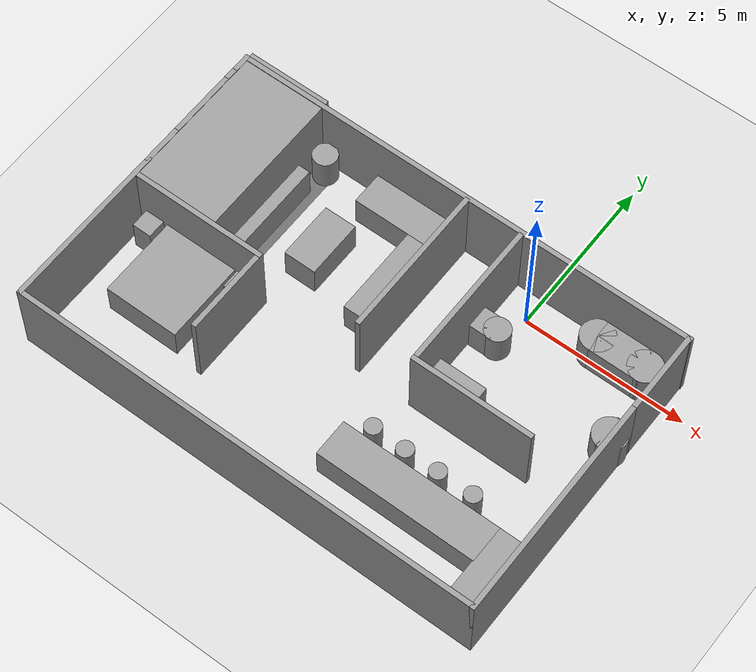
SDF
<sdf version="1.7">
 <world name="default">
  <scene><ambient>0.4 0.4 0.4 1</ambient><background>0.7 0.7 0.7 1</background><shadows>1</shadows></scene>
  <light name="sun" type="directional">
   <pose>0 0 10 0 -0 0</pose>
   <diffuse>0.8 0.8 0.8 1</diffuse>
   <specular>0.2 0.2 0.2 1</specular>
   <attenuation>
    <range>1000</range>
    <constant>0.9</constant>
    <linear>0.01</linear>
    <quadratic>0.001</quadratic>
   </attenuation>
   <direction>-0.5 0.1 -0.9</direction>
   <spot><inner_angle>0</inner_angle><outer_angle>0</outer_angle><falloff>0</falloff></spot>
  </light>
  <model name="ground_plane">
   <static>1</static>
   <link name="link">
    <collision name="collision">
     <geometry><plane><normal>0 0 1</normal><size>100 100</size></plane></geometry>
     <surface><friction><ode><mu>100</mu><mu2>50</mu2></ode></friction></surface>
    </collision>
    <visual name="visual">
     <cast_shadows>0</cast_shadows>
     <geometry><plane><normal>0 0 1</normal><size>100 100</size></plane></geometry>
     <material>
      <script><uri>file://media/materials/scripts/gazebo.material</uri><name>Gazebo/Grey</name></script>
     </material>
    </visual>
   </link>
  </model>
  <physics type="ode">
   <real_time_update_rate>0</real_time_update_rate>
   <max_step_size>0.001</max_step_size>
   <real_time_factor>1</real_time_factor>
   <ode>
    <solver>
     <type>quick</type>
     <iters>150</iters>
     <precon_iters>0</precon_iters>
     <sor>1.4</sor>
     <use_dynamic_moi_rescaling>1</use_dynamic_moi_rescaling>
    </solver>
    <constraints>
     <cfm>1e-05</cfm>
     <erp>0.2</erp>
     <contact_max_correcting_vel>2000</contact_max_correcting_vel>
     <contact_surface_layer>0.01</contact_surface_layer>
    </constraints>
   </ode>
  </physics>
  <gravity>0 0 -9.8</gravity>
  <magnetic_field>6e-06 2.3e-05 -4.2e-05</magnetic_field>
  <atmosphere type="adiabatic"/>
  <spherical_coordinates>
   <surface_model>EARTH_WGS84</surface_model>
   <latitude_deg>0</latitude_deg>
   <longitude_deg>0</longitude_deg>
   <elevation>0</elevation>
   <heading_deg>0</heading_deg>
  </spherical_coordinates>
  <model name="half_square">
   <pose>-2.87363 -3.76482 0 0 -0 0</pose>
   <link name="Wall_0">
    <collision name="Wall_0_Collision">
     <geometry><box><size>14.5 0.15 2.5</size></box></geometry>
     <pose>0 0 1.25 0 -0 0</pose>
    </collision>
    <visual name="Wall_0_Visual">
     <pose>0 0 1.25 0 -0 0</pose>
     <geometry><box><size>14.5 0.15 2.5</size></box></geometry>
     <material>
      <script><uri>file://media/materials/scripts/gazebo.material</uri><name>Gazebo/Grey</name></script>
      <ambient>1 1 1 1</ambient>
     </material>
     <meta><layer>0</layer></meta>
    </visual>
    <pose>-0.010056 -4.61503 0 0 -0 0</pose>
   </link>
   <link name="Wall_11">
    <collision name="Wall_11_Collision">
     <geometry><box><size>2.5 0.15 2.5</size></box></geometry>
     <pose>0 0 1.25 0 -0 0</pose>
    </collision>
    <visual name="Wall_11_Visual">
     <pose>0 0 1.25 0 -0 0</pose>
     <geometry><box><size>2.5 0.15 2.5</size></box></geometry>
     <material>
      <script><uri>file://media/materials/scripts/gazebo.material</uri><name>Gazebo/Grey</name></script>
      <ambient>1 1 1 1</ambient>
     </material>
     <meta><layer>0</layer></meta>
    </visual>
    <pose>7.16494 3.40997 0 0 -0 1.5708</pose>
   </link>
   <link name="Wall_13">
    <collision name="Wall_13_Collision">
     <geometry><box><size>0.730235 0.15 2.5</size></box></geometry>
     <pose>0 0 1.25 0 -0 0</pose>
    </collision>
    <visual name="Wall_13_Visual">
     <pose>0 0 1.25 0 -0 0</pose>
     <geometry><box><size>0.730235 0.15 2.5</size></box></geometry>
     <material>
      <script><uri>file://media/materials/scripts/gazebo.material</uri><name>Gazebo/Grey</name></script>
      <ambient>1 1 1 1</ambient>
     </material>
     <meta><layer>0</layer></meta>
    </visual>
    <pose>-7.18506 4.32491 0 0 -0 1.5708</pose>
   </link>
   <link name="Wall_14">
    <collision name="Wall_14_Collision">
     <geometry><box><size>14.5 0.15 2.5</size></box></geometry>
     <pose>0 0 1.25 0 -0 0</pose>
    </collision>
    <visual name="Wall_14_Visual">
     <pose>0 0 1.25 0 -0 0</pose>
     <geometry><box><size>14.5 0.15 2.5</size></box></geometry>
     <material>
      <script><uri>file://media/materials/scripts/gazebo.material</uri><name>Gazebo/Grey</name></script>
      <ambient>1 1 1 1</ambient>
     </material>
     <meta><layer>0</layer></meta>
    </visual>
    <pose>0.010057 4.61486 0 0 -0 0</pose>
   </link>
   <link name="Wall_2">
    <collision name="Wall_2_Collision">
     <geometry><box><size>5.25 0.15 2.5</size></box></geometry>
     <pose>0 0 1.25 0 -0 0</pose>
    </collision>
    <visual name="Wall_2_Visual">
     <pose>0 0 1.25 0 -0 0</pose>
     <geometry><box><size>5.25 0.15 2.5</size></box></geometry>
     <material>
      <script><uri>file://media/materials/scripts/gazebo.material</uri><name>Gazebo/Grey</name></script>
      <ambient>1 1 1 1</ambient>
     </material>
     <meta><layer>0</layer></meta>
    </visual>
    <pose>-7.18506 -2.06503 0 0 -0 1.5708</pose>
   </link>
   <link name="Wall_4">
    <collision name="Wall_4_Collision">
     <geometry><box><size>7 0.15 2.5</size></box></geometry>
     <pose>0 0 1.25 0 -0 0</pose>
    </collision>
    <visual name="Wall_4_Visual">
     <pose>0 0 1.25 0 -0 0</pose>
     <geometry><box><size>7 0.15 2.5</size></box></geometry>
     <material>
      <script><uri>file://media/materials/scripts/gazebo.material</uri><name>Gazebo/Grey</name></script>
      <ambient>1 1 1 1</ambient>
     </material>
     <meta><layer>0</layer></meta>
    </visual>
    <pose>7.16494 -1.19003 0 0 -0 1.5708</pose>
   </link>
   <link name="Wall_6">
    <collision name="Wall_6_Collision">
     <geometry><box><size>1.25 0.15 2.5</size></box></geometry>
     <pose>0 0 1.25 0 -0 0</pose>
    </collision>
    <visual name="Wall_6_Visual">
     <pose>0 0 1.25 0 -0 0</pose>
     <geometry><box><size>1.25 0.15 2.5</size></box></geometry>
     <material>
      <script><uri>file://media/materials/scripts/gazebo.material</uri><name>Gazebo/Grey</name></script>
      <ambient>1 1 1 1</ambient>
     </material>
     <meta><layer>0</layer></meta>
    </visual>
    <pose>-7.18506 1.03497 0 0 -0 1.5708</pose>
   </link>
   <link name="Wall_8">
    <collision name="Wall_8_Collision">
     <geometry><box><size>2.25 0.15 2.5</size></box></geometry>
     <pose>0 0 1.25 0 -0 0</pose>
    </collision>
    <visual name="Wall_8_Visual">
     <pose>0 0 1.25 0 -0 0</pose>
     <geometry><box><size>2.25 0.15 2.5</size></box></geometry>
     <material>
      <script><uri>file://media/materials/scripts/gazebo.material</uri><name>Gazebo/Grey</name></script>
      <ambient>1 1 1 1</ambient>
     </material>
     <meta><layer>0</layer></meta>
    </visual>
    <pose>-7.18506 2.63497 0 0 -0 1.5708</pose>
   </link>
   <link name="Wall_9">
    <collision name="Wall_9_Collision">
     <geometry><box><size>0.5 0.15 2.5</size></box></geometry>
     <pose>0 0 1.25 0 -0 0</pose>
    </collision>
    <visual name="Wall_9_Visual">
     <pose>0 0 1.25 0 -0 0</pose>
     <geometry><box><size>0.5 0.15 2.5</size></box></geometry>
     <material>
      <script><uri>file://media/materials/scripts/gazebo.material</uri><name>Gazebo/Grey</name></script>
      <ambient>1 1 1 1</ambient>
     </material>
     <meta><layer>0</layer></meta>
    </visual>
    <pose>-7.18506 3.85997 0 0 -0 1.5708</pose>
   </link>
   <static>1</static>
  </model>
  <plugin name="gazebo_occupancy_map" filename="libgazebo_2Dmap_plugin.so">
   <map_resolution>0.02</map_resolution>
   <map_height>0.7</map_height>
   <map_size_x>20</map_size_x>
   <map_size_y>20</map_size_y>
   <init_robot_x>0</init_robot_x>
   <init_robot_y>0</init_robot_y>
  </plugin>
  <model name="open_walls">
   <pose>-3.64652 -2.81912 0 0 -0 0</pose>
   <link name="Wall_41">
    <collision name="Wall_41_Collision">
     <geometry><box><size>4.75 0.15 2.5</size></box></geometry>
     <pose>0 0 1.25 0 -0 0</pose>
    </collision>
    <visual name="Wall_41_Visual">
     <pose>0 0 1.25 0 -0 0</pose>
     <geometry><box><size>4.75 0.15 2.5</size></box></geometry>
     <material>
      <script><uri>file://media/materials/scripts/gazebo.material</uri><name>Gazebo/Grey</name></script>
      <ambient>1 1 1 1</ambient>
     </material>
     <meta><layer>0</layer></meta>
    </visual>
    <pose>2.75376 1.29573 0 0 -0 1.5708</pose>
   </link>
   <link name="Wall_44">
    <collision name="Wall_44_Collision">
     <geometry><box><size>4.25 0.15 2.5</size></box></geometry>
     <pose>0 0 1.25 0 -0 0</pose>
    </collision>
    <visual name="Wall_44_Visual">
     <pose>0 0 1.25 0 -0 0</pose>
     <geometry><box><size>4.25 0.15 2.5</size></box></geometry>
     <material>
      <script><uri>file://media/materials/scripts/gazebo.material</uri><name>Gazebo/Grey</name></script>
      <ambient>1 1 1 1</ambient>
     </material>
     <meta><layer>0</layer></meta>
    </visual>
    <pose>-4.30376 -0.99573 0 0 -0 0</pose>
   </link>
   <link name="Wall_45">
    <collision name="Wall_45_Collision">
     <geometry><box><size>2.75 0.15 2.5</size></box></geometry>
     <pose>0 0 1.25 0 -0 0</pose>
    </collision>
    <visual name="Wall_45_Visual">
     <pose>0 0 1.25 0 -0 0</pose>
     <geometry><box><size>2.75 0.15 2.5</size></box></geometry>
     <material>
      <script><uri>file://media/materials/scripts/gazebo.material</uri><name>Gazebo/Grey</name></script>
      <ambient>1 1 1 1</ambient>
     </material>
     <meta><layer>0</layer></meta>
    </visual>
    <pose>-2.25376 -2.29573 0 0 -0 -1.5708</pose>
   </link>
   <link name="Wall_49">
    <collision name="Wall_49_Collision">
     <geometry><box><size>3.75 0.15 2.5</size></box></geometry>
     <pose>0 0 1.25 0 -0 0</pose>
    </collision>
    <visual name="Wall_49_Visual">
     <pose>0 0 1.25 0 -0 0</pose>
     <geometry><box><size>3.75 0.15 2.5</size></box></geometry>
     <material>
      <script><uri>file://media/materials/scripts/gazebo.material</uri><name>Gazebo/Grey</name></script>
      <ambient>1 1 1 1</ambient>
     </material>
     <meta><layer>0</layer></meta>
    </visual>
    <pose>4.55376 -1.00427 0 0 -0 0</pose>
   </link>
   <link name="Wall_51">
    <collision name="Wall_51_Collision">
     <geometry><box><size>4.75 0.15 2.5</size></box></geometry>
     <pose>0 0 1.25 0 -0 0</pose>
    </collision>
    <visual name="Wall_51_Visual">
     <pose>0 0 1.25 0 -0 0</pose>
     <geometry><box><size>4.75 0.15 2.5</size></box></geometry>
     <material>
      <script><uri>file://media/materials/scripts/gazebo.material</uri><name>Gazebo/Grey</name></script>
      <ambient>1 1 1 1</ambient>
     </material>
     <meta><layer>0</layer></meta>
    </visual>
    <pose>1.00265 1.2928 0 0 -0 -1.5708</pose>
   </link>
   <static>1</static>
  </model>
  <model name="interior_apartment">
   <link name="link_25">
    <inertial>
     <mass>5.75274</mass>
     <inertia><ixx>3.45106</ixx><ixy>0</ixy><ixz>0</ixz><iyy>3.03882</iyy><iyz>0</iyz><izz>5.53109</izz></inertia>
    </inertial>
    <pose>-6.24947 -2.42416 0 0 -0 0</pose>
    <visual name="visual">
     <geometry><box><size>2.3106 2.48973 1</size></box></geometry>
     <material>
      <lighting>1</lighting>
      <script><uri>file://media/materials/scripts/gazebo.material</uri><name>Gazebo/Grey</name></script>
      <shader type="pixel"/>
     </material>
    </visual>
    <collision name="collision">
     <geometry><box><size>2.3106 2.48973 1</size></box></geometry>
     <surface>
      <friction>
       <ode><mu>1</mu><mu2>1</mu2><fdir1>0 0 0</fdir1><slip1>0</slip1><slip2>0</slip2></ode>
       <torsional>
        <coefficient>1</coefficient>
        <patch_radius>0</patch_radius>
        <surface_radius>0</surface_radius>
        <use_patch_radius>1</use_patch_radius>
        <ode><slip>0</slip></ode>
       </torsional>
      </friction>
      <bounce><restitution_coefficient>0</restitution_coefficient><threshold>1e+06</threshold></bounce>
      <contact>
       <collide_without_contact>0</collide_without_contact>
       <collide_without_contact_bitmask>1</collide_without_contact_bitmask>
       <collide_bitmask>1</collide_bitmask>
       <ode>
        <soft_cfm>0</soft_cfm>
        <soft_erp>0.2</soft_erp>
        <kp>1e+13</kp>
        <kd>1</kd>
        <max_vel>0.01</max_vel>
        <min_depth>0</min_depth>
       </ode>
       <bullet>
        <split_impulse>1</split_impulse>
        <split_impulse_penetration_threshold>-0.01</split_impulse_penetration_threshold>
        <soft_cfm>0</soft_cfm>
        <soft_erp>0.2</soft_erp>
        <kp>1e+13</kp>
        <kd>1</kd>
       </bullet>
      </contact>
     </surface>
    </collision>
   </link>
   <link name="link_26">
    <inertial>
     <mass>0.338625</mass>
     <inertia>
      <ixx>0.0374622</ixx>
      <ixy>0</ixy>
      <ixz>0</ixz>
      <iyy>0.0380965</iyy>
      <iyz>0</iyz>
      <izz>0.0191213</izz>
     </inertia>
    </inertial>
    <pose>-7.84142 -1.45673 0 0 -0 0</pose>
    <visual name="visual">
     <geometry><box><size>0.591644 0.572334 1</size></box></geometry>
     <material>
      <lighting>1</lighting>
      <script><uri>file://media/materials/scripts/gazebo.material</uri><name>Gazebo/Grey</name></script>
      <shader type="pixel"/>
     </material>
    </visual>
    <collision name="collision">
     <geometry><box><size>0.591644 0.572334 1</size></box></geometry>
     <surface>
      <friction>
       <ode><mu>1</mu><mu2>1</mu2><fdir1>0 0 0</fdir1><slip1>0</slip1><slip2>0</slip2></ode>
       <torsional>
        <coefficient>1</coefficient>
        <patch_radius>0</patch_radius>
        <surface_radius>0</surface_radius>
        <use_patch_radius>1</use_patch_radius>
        <ode><slip>0</slip></ode>
       </torsional>
      </friction>
      <bounce><restitution_coefficient>0</restitution_coefficient><threshold>1e+06</threshold></bounce>
      <contact>
       <collide_without_contact>0</collide_without_contact>
       <collide_without_contact_bitmask>1</collide_without_contact_bitmask>
       <collide_bitmask>1</collide_bitmask>
       <ode>
        <soft_cfm>0</soft_cfm>
        <soft_erp>0.2</soft_erp>
        <kp>1e+13</kp>
        <kd>1</kd>
        <max_vel>0.01</max_vel>
        <min_depth>0</min_depth>
       </ode>
       <bullet>
        <split_impulse>1</split_impulse>
        <split_impulse_penetration_threshold>-0.01</split_impulse_penetration_threshold>
        <soft_cfm>0</soft_cfm>
        <soft_erp>0.2</soft_erp>
        <kp>1e+13</kp>
        <kd>1</kd>
       </bullet>
      </contact>
     </surface>
    </collision>
   </link>
   <link name="link_26_clone">
    <inertial>
     <mass>0.338625</mass>
     <inertia>
      <ixx>0.0374622</ixx>
      <ixy>0</ixy>
      <ixz>0</ixz>
      <iyy>0.0380965</iyy>
      <iyz>0</iyz>
      <izz>0.0191213</izz>
     </inertia>
    </inertial>
    <pose>-4.73124 -1.45506 0 0 -0 0</pose>
    <visual name="visual">
     <geometry><box><size>0.591644 0.572334 1</size></box></geometry>
     <material>
      <lighting>1</lighting>
      <script><uri>file://media/materials/scripts/gazebo.material</uri><name>Gazebo/Grey</name></script>
      <shader type="pixel"/>
     </material>
    </visual>
    <collision name="collision">
     <geometry><box><size>0.591644 0.572334 1</size></box></geometry>
     <surface>
      <friction>
       <ode><mu>1</mu><mu2>1</mu2><fdir1>0 0 0</fdir1><slip1>0</slip1><slip2>0</slip2></ode>
       <torsional>
        <coefficient>1</coefficient>
        <patch_radius>0</patch_radius>
        <surface_radius>0</surface_radius>
        <use_patch_radius>1</use_patch_radius>
        <ode><slip>0</slip></ode>
       </torsional>
      </friction>
      <bounce><restitution_coefficient>0</restitution_coefficient><threshold>1e+06</threshold></bounce>
      <contact>
       <collide_without_contact>0</collide_without_contact>
       <collide_without_contact_bitmask>1</collide_without_contact_bitmask>
       <collide_bitmask>1</collide_bitmask>
       <ode>
        <soft_cfm>0</soft_cfm>
        <soft_erp>0.2</soft_erp>
        <kp>1e+13</kp>
        <kd>1</kd>
        <max_vel>0.01</max_vel>
        <min_depth>0</min_depth>
       </ode>
       <bullet>
        <split_impulse>1</split_impulse>
        <split_impulse_penetration_threshold>-0.01</split_impulse_penetration_threshold>
        <soft_cfm>0</soft_cfm>
        <soft_erp>0.2</soft_erp>
        <kp>1e+13</kp>
        <kd>1</kd>
       </bullet>
      </contact>
     </surface>
    </collision>
   </link>
   <link name="link_27">
    <inertial>
     <mass>5.5966</mass>
     <inertia><ixx>1.06756</ixx><ixy>0</ixy><ixz>0</ixz><iyy>11.7992</iyy><iyz>0</iyz><izz>11.934</izz></inertia>
    </inertial>
    <pose>2.40008 -3.56867 0 0 -0 0</pose>
    <visual name="visual">
     <geometry><box><size>4.92943 1.13535 1</size></box></geometry>
     <material>
      <lighting>1</lighting>
      <script><uri>file://media/materials/scripts/gazebo.material</uri><name>Gazebo/Grey</name></script>
      <shader type="pixel"/>
     </material>
    </visual>
    <collision name="collision">
     <geometry><box><size>4.92943 1.13535 1</size></box></geometry>
     <surface>
      <friction>
       <ode><mu>1</mu><mu2>1</mu2><fdir1>0 0 0</fdir1><slip1>0</slip1><slip2>0</slip2></ode>
       <torsional>
        <coefficient>1</coefficient>
        <patch_radius>0</patch_radius>
        <surface_radius>0</surface_radius>
        <use_patch_radius>1</use_patch_radius>
        <ode><slip>0</slip></ode>
       </torsional>
      </friction>
      <bounce><restitution_coefficient>0</restitution_coefficient><threshold>1e+06</threshold></bounce>
      <contact>
       <collide_without_contact>0</collide_without_contact>
       <collide_without_contact_bitmask>1</collide_without_contact_bitmask>
       <collide_bitmask>1</collide_bitmask>
       <ode>
        <soft_cfm>0</soft_cfm>
        <soft_erp>0.2</soft_erp>
        <kp>1e+13</kp>
        <kd>1</kd>
        <max_vel>0.01</max_vel>
        <min_depth>0</min_depth>
       </ode>
       <bullet>
        <split_impulse>1</split_impulse>
        <split_impulse_penetration_threshold>-0.01</split_impulse_penetration_threshold>
        <soft_cfm>0</soft_cfm>
        <soft_erp>0.2</soft_erp>
        <kp>1e+13</kp>
        <kd>1</kd>
       </bullet>
      </contact>
     </surface>
    </collision>
   </link>
   <link name="link_28">
    <inertial>
     <mass>2.59133</mass>
     <inertia><ixx>1.66599</ixx><ixy>0</ixy><ixz>0</ixz><iyy>0.431888</iyy><iyz>0</iyz><izz>1.66599</izz></inertia>
    </inertial>
    <pose>5.33667 -4.29655 0 0 -0 0</pose>
    <visual name="visual">
     <geometry><box><size>1 2.59131 1</size></box></geometry>
     <material>
      <lighting>1</lighting>
      <script><uri>file://media/materials/scripts/gazebo.material</uri><name>Gazebo/Grey</name></script>
      <shader type="pixel"/>
     </material>
    </visual>
    <collision name="collision">
     <geometry><box><size>1 2.59131 1</size></box></geometry>
     <surface>
      <friction>
       <ode><mu>1</mu><mu2>1</mu2><fdir1>0 0 0</fdir1><slip1>0</slip1><slip2>0</slip2></ode>
       <torsional>
        <coefficient>1</coefficient>
        <patch_radius>0</patch_radius>
        <surface_radius>0</surface_radius>
        <use_patch_radius>1</use_patch_radius>
        <ode><slip>0</slip></ode>
       </torsional>
      </friction>
      <bounce><restitution_coefficient>0</restitution_coefficient><threshold>1e+06</threshold></bounce>
      <contact>
       <collide_without_contact>0</collide_without_contact>
       <collide_without_contact_bitmask>1</collide_without_contact_bitmask>
       <collide_bitmask>1</collide_bitmask>
       <ode>
        <soft_cfm>0</soft_cfm>
        <soft_erp>0.2</soft_erp>
        <kp>1e+13</kp>
        <kd>1</kd>
        <max_vel>0.01</max_vel>
        <min_depth>0</min_depth>
       </ode>
       <bullet>
        <split_impulse>1</split_impulse>
        <split_impulse_penetration_threshold>-0.01</split_impulse_penetration_threshold>
        <soft_cfm>0</soft_cfm>
        <soft_erp>0.2</soft_erp>
        <kp>1e+13</kp>
        <kd>1</kd>
       </bullet>
      </contact>
     </surface>
    </collision>
   </link>
   <link name="link_29">
    <inertial>
     <mass>0.253753</mass>
     <inertia>
      <ixx>0.0251705</ixx>
      <ixy>0</ixy>
      <ixz>0</ixz>
      <iyy>0.0251705</iyy>
      <iyz>0</iyz>
      <izz>0.00804876</izz>
     </inertia>
    </inertial>
    <pose>0.614105 -2.65673 0 0 -0 0</pose>
    <visual name="visual">
     <geometry><cylinder><radius>0.251868</radius><length>1</length></cylinder></geometry>
     <material>
      <lighting>1</lighting>
      <script><uri>file://media/materials/scripts/gazebo.material</uri><name>Gazebo/Grey</name></script>
      <shader type="pixel"/>
     </material>
    </visual>
    <collision name="collision">
     <geometry><cylinder><radius>0.251868</radius><length>1</length></cylinder></geometry>
     <surface>
      <friction>
       <ode><mu>1</mu><mu2>1</mu2><fdir1>0 0 0</fdir1><slip1>0</slip1><slip2>0</slip2></ode>
       <torsional>
        <coefficient>1</coefficient>
        <patch_radius>0</patch_radius>
        <surface_radius>0</surface_radius>
        <use_patch_radius>1</use_patch_radius>
        <ode><slip>0</slip></ode>
       </torsional>
      </friction>
      <bounce><restitution_coefficient>0</restitution_coefficient><threshold>1e+06</threshold></bounce>
      <contact>
       <collide_without_contact>0</collide_without_contact>
       <collide_without_contact_bitmask>1</collide_without_contact_bitmask>
       <collide_bitmask>1</collide_bitmask>
       <ode>
        <soft_cfm>0</soft_cfm>
        <soft_erp>0.2</soft_erp>
        <kp>1e+13</kp>
        <kd>1</kd>
        <max_vel>0.01</max_vel>
        <min_depth>0</min_depth>
       </ode>
       <bullet>
        <split_impulse>1</split_impulse>
        <split_impulse_penetration_threshold>-0.01</split_impulse_penetration_threshold>
        <soft_cfm>0</soft_cfm>
        <soft_erp>0.2</soft_erp>
        <kp>1e+13</kp>
        <kd>1</kd>
       </bullet>
      </contact>
     </surface>
    </collision>
   </link>
   <link name="link_29_clone">
    <inertial>
     <mass>0.253753</mass>
     <inertia>
      <ixx>0.0251705</ixx>
      <ixy>0</ixy>
      <ixz>0</ixz>
      <iyy>0.0251705</iyy>
      <iyz>0</iyz>
      <izz>0.00804876</izz>
     </inertia>
    </inertial>
    <pose>1.65194 -2.6776 0 0 -0 0</pose>
    <visual name="visual">
     <geometry><cylinder><radius>0.251868</radius><length>1</length></cylinder></geometry>
     <material>
      <lighting>1</lighting>
      <script><uri>file://media/materials/scripts/gazebo.material</uri><name>Gazebo/Grey</name></script>
      <shader type="pixel"/>
     </material>
    </visual>
    <collision name="collision">
     <geometry><cylinder><radius>0.251868</radius><length>1</length></cylinder></geometry>
     <surface>
      <friction>
       <ode><mu>1</mu><mu2>1</mu2><fdir1>0 0 0</fdir1><slip1>0</slip1><slip2>0</slip2></ode>
       <torsional>
        <coefficient>1</coefficient>
        <patch_radius>0</patch_radius>
        <surface_radius>0</surface_radius>
        <use_patch_radius>1</use_patch_radius>
        <ode><slip>0</slip></ode>
       </torsional>
      </friction>
      <bounce><restitution_coefficient>0</restitution_coefficient><threshold>1e+06</threshold></bounce>
      <contact>
       <collide_without_contact>0</collide_without_contact>
       <collide_without_contact_bitmask>1</collide_without_contact_bitmask>
       <collide_bitmask>1</collide_bitmask>
       <ode>
        <soft_cfm>0</soft_cfm>
        <soft_erp>0.2</soft_erp>
        <kp>1e+13</kp>
        <kd>1</kd>
        <max_vel>0.01</max_vel>
        <min_depth>0</min_depth>
       </ode>
       <bullet>
        <split_impulse>1</split_impulse>
        <split_impulse_penetration_threshold>-0.01</split_impulse_penetration_threshold>
        <soft_cfm>0</soft_cfm>
        <soft_erp>0.2</soft_erp>
        <kp>1e+13</kp>
        <kd>1</kd>
       </bullet>
      </contact>
     </surface>
    </collision>
   </link>
   <link name="link_29_clone_0">
    <inertial>
     <mass>0.253753</mass>
     <inertia>
      <ixx>0.0251705</ixx>
      <ixy>0</ixy>
      <ixz>0</ixz>
      <iyy>0.0251705</iyy>
      <iyz>0</iyz>
      <izz>0.00804876</izz>
     </inertia>
    </inertial>
    <pose>2.68582 -2.67228 0 0 -0 0</pose>
    <visual name="visual">
     <geometry><cylinder><radius>0.251868</radius><length>1</length></cylinder></geometry>
     <material>
      <lighting>1</lighting>
      <script><uri>file://media/materials/scripts/gazebo.material</uri><name>Gazebo/Grey</name></script>
      <shader type="pixel"/>
     </material>
    </visual>
    <collision name="collision">
     <geometry><cylinder><radius>0.251868</radius><length>1</length></cylinder></geometry>
     <surface>
      <friction>
       <ode><mu>1</mu><mu2>1</mu2><fdir1>0 0 0</fdir1><slip1>0</slip1><slip2>0</slip2></ode>
       <torsional>
        <coefficient>1</coefficient>
        <patch_radius>0</patch_radius>
        <surface_radius>0</surface_radius>
        <use_patch_radius>1</use_patch_radius>
        <ode><slip>0</slip></ode>
       </torsional>
      </friction>
      <bounce><restitution_coefficient>0</restitution_coefficient><threshold>1e+06</threshold></bounce>
      <contact>
       <collide_without_contact>0</collide_without_contact>
       <collide_without_contact_bitmask>1</collide_without_contact_bitmask>
       <collide_bitmask>1</collide_bitmask>
       <ode>
        <soft_cfm>0</soft_cfm>
        <soft_erp>0.2</soft_erp>
        <kp>1e+13</kp>
        <kd>1</kd>
        <max_vel>0.01</max_vel>
        <min_depth>0</min_depth>
       </ode>
       <bullet>
        <split_impulse>1</split_impulse>
        <split_impulse_penetration_threshold>-0.01</split_impulse_penetration_threshold>
        <soft_cfm>0</soft_cfm>
        <soft_erp>0.2</soft_erp>
        <kp>1e+13</kp>
        <kd>1</kd>
       </bullet>
      </contact>
     </surface>
    </collision>
   </link>
   <link name="link_29_clone_1">
    <inertial>
     <mass>0.253753</mass>
     <inertia>
      <ixx>0.0251705</ixx>
      <ixy>0</ixy>
      <ixz>0</ixz>
      <iyy>0.0251705</iyy>
      <iyz>0</iyz>
      <izz>0.00804876</izz>
     </inertia>
    </inertial>
    <pose>3.77525 -2.66105 0 0 -0 0</pose>
    <visual name="visual">
     <geometry><cylinder><radius>0.251868</radius><length>1</length></cylinder></geometry>
     <material>
      <lighting>1</lighting>
      <script><uri>file://media/materials/scripts/gazebo.material</uri><name>Gazebo/Grey</name></script>
      <shader type="pixel"/>
     </material>
    </visual>
    <collision name="collision">
     <geometry><cylinder><radius>0.251868</radius><length>1</length></cylinder></geometry>
     <surface>
      <friction>
       <ode><mu>1</mu><mu2>1</mu2><fdir1>0 0 0</fdir1><slip1>0</slip1><slip2>0</slip2></ode>
       <torsional>
        <coefficient>1</coefficient>
        <patch_radius>0</patch_radius>
        <surface_radius>0</surface_radius>
        <use_patch_radius>1</use_patch_radius>
        <ode><slip>0</slip></ode>
       </torsional>
      </friction>
      <bounce><restitution_coefficient>0</restitution_coefficient><threshold>1e+06</threshold></bounce>
      <contact>
       <collide_without_contact>0</collide_without_contact>
       <collide_without_contact_bitmask>1</collide_without_contact_bitmask>
       <collide_bitmask>1</collide_bitmask>
       <ode>
        <soft_cfm>0</soft_cfm>
        <soft_erp>0.2</soft_erp>
        <kp>1e+13</kp>
        <kd>1</kd>
        <max_vel>0.01</max_vel>
        <min_depth>0</min_depth>
       </ode>
       <bullet>
        <split_impulse>1</split_impulse>
        <split_impulse_penetration_threshold>-0.01</split_impulse_penetration_threshold>
        <soft_cfm>0</soft_cfm>
        <soft_erp>0.2</soft_erp>
        <kp>1e+13</kp>
        <kd>1</kd>
       </bullet>
      </contact>
     </surface>
    </collision>
   </link>
   <link name="link_30">
    <inertial>
     <mass>1.17231</mass>
     <inertia>
      <ixx>0.875171</ixx>
      <ixy>0</ixy>
      <ixz>0</ixz>
      <iyy>0.114562</iyy>
      <iyz>0</iyz>
      <izz>0.794348</izz>
     </inertia>
    </inertial>
    <pose>-5.64113 1.03527 0 0 -0 0</pose>
    <visual name="visual">
     <geometry><box><size>0.41555 2.82106 1</size></box></geometry>
     <material>
      <lighting>1</lighting>
      <script><uri>file://media/materials/scripts/gazebo.material</uri><name>Gazebo/Grey</name></script>
      <shader type="pixel"/>
     </material>
    </visual>
    <collision name="collision">
     <geometry><box><size>0.41555 2.82106 1</size></box></geometry>
     <surface>
      <friction>
       <ode><mu>1</mu><mu2>1</mu2><fdir1>0 0 0</fdir1><slip1>0</slip1><slip2>0</slip2></ode>
       <torsional>
        <coefficient>1</coefficient>
        <patch_radius>0</patch_radius>
        <surface_radius>0</surface_radius>
        <use_patch_radius>1</use_patch_radius>
        <ode><slip>0</slip></ode>
       </torsional>
      </friction>
      <bounce><restitution_coefficient>0</restitution_coefficient><threshold>1e+06</threshold></bounce>
      <contact>
       <collide_without_contact>0</collide_without_contact>
       <collide_without_contact_bitmask>1</collide_without_contact_bitmask>
       <collide_bitmask>1</collide_bitmask>
       <ode>
        <soft_cfm>0</soft_cfm>
        <soft_erp>0.2</soft_erp>
        <kp>1e+13</kp>
        <kd>1</kd>
        <max_vel>0.01</max_vel>
        <min_depth>0</min_depth>
       </ode>
       <bullet>
        <split_impulse>1</split_impulse>
        <split_impulse_penetration_threshold>-0.01</split_impulse_penetration_threshold>
        <soft_cfm>0</soft_cfm>
        <soft_erp>0.2</soft_erp>
        <kp>1e+13</kp>
        <kd>1</kd>
       </bullet>
      </contact>
     </surface>
    </collision>
   </link>
   <link name="link_31">
    <inertial>
     <mass>1.77925</mass>
     <inertia>
      <ixx>0.617661</ixx>
      <ixy>0</ixy>
      <ixz>0</ixz>
      <iyy>0.296542</iyy>
      <iyz>0</iyz>
      <izz>0.617661</izz>
     </inertia>
    </inertial>
    <pose>-3.8872 0.925104 0 0 -0 0</pose>
    <visual name="visual">
     <geometry><box><size>1 1.77926 1</size></box></geometry>
     <material>
      <lighting>1</lighting>
      <script><uri>file://media/materials/scripts/gazebo.material</uri><name>Gazebo/Grey</name></script>
      <shader type="pixel"/>
     </material>
    </visual>
    <collision name="collision">
     <geometry><box><size>1 1.77926 1</size></box></geometry>
     <surface>
      <friction>
       <ode><mu>1</mu><mu2>1</mu2><fdir1>0 0 0</fdir1><slip1>0</slip1><slip2>0</slip2></ode>
       <torsional>
        <coefficient>1</coefficient>
        <patch_radius>0</patch_radius>
        <surface_radius>0</surface_radius>
        <use_patch_radius>1</use_patch_radius>
        <ode><slip>0</slip></ode>
       </torsional>
      </friction>
      <bounce><restitution_coefficient>0</restitution_coefficient><threshold>1e+06</threshold></bounce>
      <contact>
       <collide_without_contact>0</collide_without_contact>
       <collide_without_contact_bitmask>1</collide_without_contact_bitmask>
       <collide_bitmask>1</collide_bitmask>
       <ode>
        <soft_cfm>0</soft_cfm>
        <soft_erp>0.2</soft_erp>
        <kp>1e+13</kp>
        <kd>1</kd>
        <max_vel>0.01</max_vel>
        <min_depth>0</min_depth>
       </ode>
       <bullet>
        <split_impulse>1</split_impulse>
        <split_impulse_penetration_threshold>-0.01</split_impulse_penetration_threshold>
        <soft_cfm>0</soft_cfm>
        <soft_erp>0.2</soft_erp>
        <kp>1e+13</kp>
        <kd>1</kd>
       </bullet>
      </contact>
     </surface>
    </collision>
   </link>
   <link name="link_32">
    <inertial>
     <mass>0.54604</mass>
     <inertia>
      <ixx>0.0641382</ixx>
      <ixy>0</ixy>
      <ixz>0</ixz>
      <iyy>0.0641382</iyy>
      <iyz>0</iyz>
      <izz>0.0372697</izz>
     </inertia>
    </inertial>
    <pose>-5.44799 3.15097 0 0 -0 0</pose>
    <visual name="visual">
     <geometry><cylinder><radius>0.369471</radius><length>1</length></cylinder></geometry>
     <material>
      <lighting>1</lighting>
      <script><uri>file://media/materials/scripts/gazebo.material</uri><name>Gazebo/Grey</name></script>
      <shader type="pixel"/>
     </material>
    </visual>
    <collision name="collision">
     <geometry><cylinder><radius>0.369471</radius><length>1</length></cylinder></geometry>
     <surface>
      <friction>
       <ode><mu>1</mu><mu2>1</mu2><fdir1>0 0 0</fdir1><slip1>0</slip1><slip2>0</slip2></ode>
       <torsional>
        <coefficient>1</coefficient>
        <patch_radius>0</patch_radius>
        <surface_radius>0</surface_radius>
        <use_patch_radius>1</use_patch_radius>
        <ode><slip>0</slip></ode>
       </torsional>
      </friction>
      <bounce><restitution_coefficient>0</restitution_coefficient><threshold>1e+06</threshold></bounce>
      <contact>
       <collide_without_contact>0</collide_without_contact>
       <collide_without_contact_bitmask>1</collide_without_contact_bitmask>
       <collide_bitmask>1</collide_bitmask>
       <ode>
        <soft_cfm>0</soft_cfm>
        <soft_erp>0.2</soft_erp>
        <kp>1e+13</kp>
        <kd>1</kd>
        <max_vel>0.01</max_vel>
        <min_depth>0</min_depth>
       </ode>
       <bullet>
        <split_impulse>1</split_impulse>
        <split_impulse_penetration_threshold>-0.01</split_impulse_penetration_threshold>
        <soft_cfm>0</soft_cfm>
        <soft_erp>0.2</soft_erp>
        <kp>1e+13</kp>
        <kd>1</kd>
       </bullet>
      </contact>
     </surface>
    </collision>
   </link>
   <link name="link_33">
    <inertial>
     <mass>2.78498</mass>
     <inertia><ixx>0.464163</ixx><ixy>0</ixy><ixz>0</ixz><iyy>2.03213</iyy><iyz>0</iyz><izz>2.03213</izz></inertia>
    </inertial>
    <pose>-2.50387 2.97821 0 0 -0 0</pose>
    <visual name="visual">
     <geometry><box><size>2.78498 1 1</size></box></geometry>
     <material>
      <lighting>1</lighting>
      <script><uri>file://media/materials/scripts/gazebo.material</uri><name>Gazebo/Grey</name></script>
      <shader type="pixel"/>
     </material>
    </visual>
    <collision name="collision">
     <geometry><box><size>2.78498 1 1</size></box></geometry>
     <surface>
      <friction>
       <ode><mu>1</mu><mu2>1</mu2><fdir1>0 0 0</fdir1><slip1>0</slip1><slip2>0</slip2></ode>
       <torsional>
        <coefficient>1</coefficient>
        <patch_radius>0</patch_radius>
        <surface_radius>0</surface_radius>
        <use_patch_radius>1</use_patch_radius>
        <ode><slip>0</slip></ode>
       </torsional>
      </friction>
      <bounce><restitution_coefficient>0</restitution_coefficient><threshold>1e+06</threshold></bounce>
      <contact>
       <collide_without_contact>0</collide_without_contact>
       <collide_without_contact_bitmask>1</collide_without_contact_bitmask>
       <collide_bitmask>1</collide_bitmask>
       <ode>
        <soft_cfm>0</soft_cfm>
        <soft_erp>0.2</soft_erp>
        <kp>1e+13</kp>
        <kd>1</kd>
        <max_vel>0.01</max_vel>
        <min_depth>0</min_depth>
       </ode>
       <bullet>
        <split_impulse>1</split_impulse>
        <split_impulse_penetration_threshold>-0.01</split_impulse_penetration_threshold>
        <soft_cfm>0</soft_cfm>
        <soft_erp>0.2</soft_erp>
        <kp>1e+13</kp>
        <kd>1</kd>
       </bullet>
      </contact>
     </surface>
    </collision>
   </link>
   <link name="link_34">
    <inertial>
     <mass>2.83078</mass>
     <inertia><ixx>2.12623</ixx><ixy>0</ixy><ixz>0</ixz><iyy>0.471796</iyy><iyz>0</iyz><izz>2.12623</izz></inertia>
    </inertial>
    <pose>-1.63315 1.10062 0 0 -0 0</pose>
    <visual name="visual">
     <geometry><box><size>1 2.83078 1</size></box></geometry>
     <material>
      <lighting>1</lighting>
      <script><uri>file://media/materials/scripts/gazebo.material</uri><name>Gazebo/Grey</name></script>
      <shader type="pixel"/>
     </material>
    </visual>
    <collision name="collision">
     <geometry><box><size>1 2.83078 1</size></box></geometry>
     <surface>
      <friction>
       <ode><mu>1</mu><mu2>1</mu2><fdir1>0 0 0</fdir1><slip1>0</slip1><slip2>0</slip2></ode>
       <torsional>
        <coefficient>1</coefficient>
        <patch_radius>0</patch_radius>
        <surface_radius>0</surface_radius>
        <use_patch_radius>1</use_patch_radius>
        <ode><slip>0</slip></ode>
       </torsional>
      </friction>
      <bounce><restitution_coefficient>0</restitution_coefficient><threshold>1e+06</threshold></bounce>
      <contact>
       <collide_without_contact>0</collide_without_contact>
       <collide_without_contact_bitmask>1</collide_without_contact_bitmask>
       <collide_bitmask>1</collide_bitmask>
       <ode>
        <soft_cfm>0</soft_cfm>
        <soft_erp>0.2</soft_erp>
        <kp>1e+13</kp>
        <kd>1</kd>
        <max_vel>0.01</max_vel>
        <min_depth>0</min_depth>
       </ode>
       <bullet>
        <split_impulse>1</split_impulse>
        <split_impulse_penetration_threshold>-0.01</split_impulse_penetration_threshold>
        <soft_cfm>0</soft_cfm>
        <soft_erp>0.2</soft_erp>
        <kp>1e+13</kp>
        <kd>1</kd>
       </bullet>
      </contact>
     </surface>
    </collision>
   </link>
   <link name="link_35">
    <inertial>
     <mass>49.8746</mass>
     <inertia><ixx>161.488</ixx><ixy>0</ixy><ixz>0</ixz><iyy>93.8323</iyy><iyz>0</iyz><izz>124.5</izz></inertia>
    </inertial>
    <pose>-7.10304 1.37116 0 0 -0 0</pose>
    <visual name="visual">
     <geometry><box><size>2.61503 4.80798 3.96711</size></box></geometry>
     <material>
      <lighting>1</lighting>
      <script><uri>file://media/materials/scripts/gazebo.material</uri><name>Gazebo/Grey</name></script>
      <shader type="pixel"/>
     </material>
    </visual>
    <collision name="collision">
     <geometry><box><size>2.61503 4.80798 3.96711</size></box></geometry>
     <surface>
      <friction>
       <ode><mu>1</mu><mu2>1</mu2><fdir1>0 0 0</fdir1><slip1>0</slip1><slip2>0</slip2></ode>
       <torsional>
        <coefficient>1</coefficient>
        <patch_radius>0</patch_radius>
        <surface_radius>0</surface_radius>
        <use_patch_radius>1</use_patch_radius>
        <ode><slip>0</slip></ode>
       </torsional>
      </friction>
      <bounce><restitution_coefficient>0</restitution_coefficient><threshold>1e+06</threshold></bounce>
      <contact>
       <collide_without_contact>0</collide_without_contact>
       <collide_without_contact_bitmask>1</collide_without_contact_bitmask>
       <collide_bitmask>1</collide_bitmask>
       <ode>
        <soft_cfm>0</soft_cfm>
        <soft_erp>0.2</soft_erp>
        <kp>1e+13</kp>
        <kd>1</kd>
        <max_vel>0.01</max_vel>
        <min_depth>0</min_depth>
       </ode>
       <bullet>
        <split_impulse>1</split_impulse>
        <split_impulse_penetration_threshold>-0.01</split_impulse_penetration_threshold>
        <soft_cfm>0</soft_cfm>
        <soft_erp>0.2</soft_erp>
        <kp>1e+13</kp>
        <kd>1</kd>
       </bullet>
      </contact>
     </surface>
    </collision>
   </link>
   <link name="link_36">
    <inertial>
     <mass>1.59561</mass>
     <inertia>
      <ixx>0.265935</ixx>
      <ixy>0</ixy>
      <ixz>0</ixz>
      <iyy>0.471498</iyy>
      <iyz>0</iyz>
      <izz>0.471498</izz>
     </inertia>
    </inertial>
    <pose>4.43599 3.01004 0 0 -0 0</pose>
    <visual name="visual">
     <geometry><box><size>1.59561 1 1</size></box></geometry>
     <material>
      <lighting>1</lighting>
      <script><uri>file://media/materials/scripts/gazebo.material</uri><name>Gazebo/Grey</name></script>
      <shader type="pixel"/>
     </material>
    </visual>
    <collision name="collision">
     <geometry><box><size>1.59561 1 1</size></box></geometry>
     <surface>
      <friction>
       <ode><mu>1</mu><mu2>1</mu2><fdir1>0 0 0</fdir1><slip1>0</slip1><slip2>0</slip2></ode>
       <torsional>
        <coefficient>1</coefficient>
        <patch_radius>0</patch_radius>
        <surface_radius>0</surface_radius>
        <use_patch_radius>1</use_patch_radius>
        <ode><slip>0</slip></ode>
       </torsional>
      </friction>
      <bounce><restitution_coefficient>0</restitution_coefficient><threshold>1e+06</threshold></bounce>
      <contact>
       <collide_without_contact>0</collide_without_contact>
       <collide_without_contact_bitmask>1</collide_without_contact_bitmask>
       <collide_bitmask>1</collide_bitmask>
       <ode>
        <soft_cfm>0</soft_cfm>
        <soft_erp>0.2</soft_erp>
        <kp>1e+13</kp>
        <kd>1</kd>
        <max_vel>0.01</max_vel>
        <min_depth>0</min_depth>
       </ode>
       <bullet>
        <split_impulse>1</split_impulse>
        <split_impulse_penetration_threshold>-0.01</split_impulse_penetration_threshold>
        <soft_cfm>0</soft_cfm>
        <soft_erp>0.2</soft_erp>
        <kp>1e+13</kp>
        <kd>1</kd>
       </bullet>
      </contact>
     </surface>
    </collision>
   </link>
   <link name="link_37">
    <inertial>
     <mass>1</mass>
     <inertia><ixx>0.145833</ixx><ixy>0</ixy><ixz>0</ixz><iyy>0.145833</iyy><iyz>0</iyz><izz>0.125</izz></inertia>
    </inertial>
    <pose>5.14487 3.00388 0 0 -0 0</pose>
    <visual name="visual">
     <geometry><cylinder><radius>0.5</radius><length>1</length></cylinder></geometry>
     <material>
      <lighting>1</lighting>
      <script><uri>file://media/materials/scripts/gazebo.material</uri><name>Gazebo/Grey</name></script>
      <shader type="pixel"/>
     </material>
    </visual>
    <collision name="collision">
     <geometry><cylinder><radius>0.5</radius><length>1</length></cylinder></geometry>
     <surface>
      <friction>
       <ode><mu>1</mu><mu2>1</mu2><fdir1>0 0 0</fdir1><slip1>0</slip1><slip2>0</slip2></ode>
       <torsional>
        <coefficient>1</coefficient>
        <patch_radius>0</patch_radius>
        <surface_radius>0</surface_radius>
        <use_patch_radius>1</use_patch_radius>
        <ode><slip>0</slip></ode>
       </torsional>
      </friction>
      <bounce><restitution_coefficient>0</restitution_coefficient><threshold>1e+06</threshold></bounce>
      <contact>
       <collide_without_contact>0</collide_without_contact>
       <collide_without_contact_bitmask>1</collide_without_contact_bitmask>
       <collide_bitmask>1</collide_bitmask>
       <ode>
        <soft_cfm>0</soft_cfm>
        <soft_erp>0.2</soft_erp>
        <kp>1e+13</kp>
        <kd>1</kd>
        <max_vel>0.01</max_vel>
        <min_depth>0</min_depth>
       </ode>
       <bullet>
        <split_impulse>1</split_impulse>
        <split_impulse_penetration_threshold>-0.01</split_impulse_penetration_threshold>
        <soft_cfm>0</soft_cfm>
        <soft_erp>0.2</soft_erp>
        <kp>1e+13</kp>
        <kd>1</kd>
       </bullet>
      </contact>
     </surface>
    </collision>
   </link>
   <link name="link_38">
    <inertial>
     <mass>1</mass>
     <inertia><ixx>0.145833</ixx><ixy>0</ixy><ixz>0</ixz><iyy>0.145833</iyy><iyz>0</iyz><izz>0.125</izz></inertia>
    </inertial>
    <pose>3.64526 3.00473 0 0 -0 0</pose>
    <visual name="visual">
     <geometry><cylinder><radius>0.5</radius><length>1</length></cylinder></geometry>
     <material>
      <lighting>1</lighting>
      <script><uri>file://media/materials/scripts/gazebo.material</uri><name>Gazebo/Grey</name></script>
      <shader type="pixel"/>
     </material>
    </visual>
    <collision name="collision">
     <geometry><cylinder><radius>0.5</radius><length>1</length></cylinder></geometry>
     <surface>
      <friction>
       <ode><mu>1</mu><mu2>1</mu2><fdir1>0 0 0</fdir1><slip1>0</slip1><slip2>0</slip2></ode>
       <torsional>
        <coefficient>1</coefficient>
        <patch_radius>0</patch_radius>
        <surface_radius>0</surface_radius>
        <use_patch_radius>1</use_patch_radius>
        <ode><slip>0</slip></ode>
       </torsional>
      </friction>
      <bounce><restitution_coefficient>0</restitution_coefficient><threshold>1e+06</threshold></bounce>
      <contact>
       <collide_without_contact>0</collide_without_contact>
       <collide_without_contact_bitmask>1</collide_without_contact_bitmask>
       <collide_bitmask>1</collide_bitmask>
       <ode>
        <soft_cfm>0</soft_cfm>
        <soft_erp>0.2</soft_erp>
        <kp>1e+13</kp>
        <kd>1</kd>
        <max_vel>0.01</max_vel>
        <min_depth>0</min_depth>
       </ode>
       <bullet>
        <split_impulse>1</split_impulse>
        <split_impulse_penetration_threshold>-0.01</split_impulse_penetration_threshold>
        <soft_cfm>0</soft_cfm>
        <soft_erp>0.2</soft_erp>
        <kp>1e+13</kp>
        <kd>1</kd>
       </bullet>
      </contact>
     </surface>
    </collision>
   </link>
   <link name="link_39">
    <inertial>
     <mass>1.46348</mass>
     <inertia>
      <ixx>0.243913</ixx>
      <ixy>0</ixy>
      <ixz>0</ixz>
      <iyy>0.383158</iyy>
      <iyz>0</iyz>
      <izz>0.383158</izz>
     </inertia>
    </inertial>
    <pose>1.54384 -0.524689 0 0 -0 0</pose>
    <visual name="visual">
     <geometry><box><size>1.46348 1 1</size></box></geometry>
     <material>
      <lighting>1</lighting>
      <script><uri>file://media/materials/scripts/gazebo.material</uri><name>Gazebo/Grey</name></script>
      <shader type="pixel"/>
     </material>
    </visual>
    <collision name="collision">
     <geometry><box><size>1.46348 1 1</size></box></geometry>
     <surface>
      <friction>
       <ode><mu>1</mu><mu2>1</mu2><fdir1>0 0 0</fdir1><slip1>0</slip1><slip2>0</slip2></ode>
       <torsional>
        <coefficient>1</coefficient>
        <patch_radius>0</patch_radius>
        <surface_radius>0</surface_radius>
        <use_patch_radius>1</use_patch_radius>
        <ode><slip>0</slip></ode>
       </torsional>
      </friction>
      <bounce><restitution_coefficient>0</restitution_coefficient><threshold>1e+06</threshold></bounce>
      <contact>
       <collide_without_contact>0</collide_without_contact>
       <collide_without_contact_bitmask>1</collide_without_contact_bitmask>
       <collide_bitmask>1</collide_bitmask>
       <ode>
        <soft_cfm>0</soft_cfm>
        <soft_erp>0.2</soft_erp>
        <kp>1e+13</kp>
        <kd>1</kd>
        <max_vel>0.01</max_vel>
        <min_depth>0</min_depth>
       </ode>
       <bullet>
        <split_impulse>1</split_impulse>
        <split_impulse_penetration_threshold>-0.01</split_impulse_penetration_threshold>
        <soft_cfm>0</soft_cfm>
        <soft_erp>0.2</soft_erp>
        <kp>1e+13</kp>
        <kd>1</kd>
       </bullet>
      </contact>
     </surface>
    </collision>
   </link>
   <link name="link_40">
    <inertial>
     <mass>0.477859</mass>
     <inertia>
      <ixx>0.0596693</ixx>
      <ixy>0</ixy>
      <ixz>0</ixz>
      <iyy>0.0580653</iyy>
      <iyz>0</iyz>
      <izz>0.0380914</izz>
     </inertia>
    </inertial>
    <pose>1.16024 1.56472 0 0 -0 0</pose>
    <visual name="visual">
     <geometry><box><size>0.676857 0.705985 1</size></box></geometry>
     <material>
      <lighting>1</lighting>
      <script><uri>file://media/materials/scripts/gazebo.material</uri><name>Gazebo/Grey</name></script>
      <shader type="pixel"/>
     </material>
    </visual>
    <collision name="collision">
     <geometry><box><size>0.676857 0.705985 1</size></box></geometry>
     <surface>
      <friction>
       <ode><mu>1</mu><mu2>1</mu2><fdir1>0 0 0</fdir1><slip1>0</slip1><slip2>0</slip2></ode>
       <torsional>
        <coefficient>1</coefficient>
        <patch_radius>0</patch_radius>
        <surface_radius>0</surface_radius>
        <use_patch_radius>1</use_patch_radius>
        <ode><slip>0</slip></ode>
       </torsional>
      </friction>
      <bounce><restitution_coefficient>0</restitution_coefficient><threshold>1e+06</threshold></bounce>
      <contact>
       <collide_without_contact>0</collide_without_contact>
       <collide_without_contact_bitmask>1</collide_without_contact_bitmask>
       <collide_bitmask>1</collide_bitmask>
       <ode>
        <soft_cfm>0</soft_cfm>
        <soft_erp>0.2</soft_erp>
        <kp>1e+13</kp>
        <kd>1</kd>
        <max_vel>0.01</max_vel>
        <min_depth>0</min_depth>
       </ode>
       <bullet>
        <split_impulse>1</split_impulse>
        <split_impulse_penetration_threshold>-0.01</split_impulse_penetration_threshold>
        <soft_cfm>0</soft_cfm>
        <soft_erp>0.2</soft_erp>
        <kp>1e+13</kp>
        <kd>1</kd>
       </bullet>
      </contact>
     </surface>
    </collision>
   </link>
   <link name="link_41">
    <inertial>
     <mass>0.588401</mass>
     <inertia>
      <ixx>0.070672</ixx>
      <ixy>0</ixy>
      <ixz>0</ixz>
      <iyy>0.070672</iyy>
      <iyz>0</iyz>
      <izz>0.0432772</izz>
     </inertia>
    </inertial>
    <pose>1.46796 1.57323 0 0 -0 0</pose>
    <visual name="visual">
     <geometry><cylinder><radius>0.383538</radius><length>1</length></cylinder></geometry>
     <material>
      <lighting>1</lighting>
      <script><uri>file://media/materials/scripts/gazebo.material</uri><name>Gazebo/Grey</name></script>
      <shader type="pixel"/>
     </material>
    </visual>
    <collision name="collision">
     <geometry><cylinder><radius>0.383538</radius><length>1</length></cylinder></geometry>
     <surface>
      <friction>
       <ode><mu>1</mu><mu2>1</mu2><fdir1>0 0 0</fdir1><slip1>0</slip1><slip2>0</slip2></ode>
       <torsional>
        <coefficient>1</coefficient>
        <patch_radius>0</patch_radius>
        <surface_radius>0</surface_radius>
        <use_patch_radius>1</use_patch_radius>
        <ode><slip>0</slip></ode>
       </torsional>
      </friction>
      <bounce><restitution_coefficient>0</restitution_coefficient><threshold>1e+06</threshold></bounce>
      <contact>
       <collide_without_contact>0</collide_without_contact>
       <collide_without_contact_bitmask>1</collide_without_contact_bitmask>
       <collide_bitmask>1</collide_bitmask>
       <ode>
        <soft_cfm>0</soft_cfm>
        <soft_erp>0.2</soft_erp>
        <kp>1e+13</kp>
        <kd>1</kd>
        <max_vel>0.01</max_vel>
        <min_depth>0</min_depth>
       </ode>
       <bullet>
        <split_impulse>1</split_impulse>
        <split_impulse_penetration_threshold>-0.01</split_impulse_penetration_threshold>
        <soft_cfm>0</soft_cfm>
        <soft_erp>0.2</soft_erp>
        <kp>1e+13</kp>
        <kd>1</kd>
       </bullet>
      </contact>
     </surface>
    </collision>
   </link>
   <link name="link_42">
    <inertial>
     <mass>0.434071</mass>
     <inertia>
      <ixx>0.0723452</ixx>
      <ixy>0</ixy>
      <ixz>0</ixz>
      <iyy>0.0429883</iyy>
      <iyz>0</iyz>
      <izz>0.0429883</izz>
     </inertia>
    </inertial>
    <pose>5.63984 0.841194 0 0 -0 0</pose>
    <visual name="visual">
     <geometry><box><size>0.434075 1 1</size></box></geometry>
     <material>
      <lighting>1</lighting>
      <script><uri>file://media/materials/scripts/gazebo.material</uri><name>Gazebo/Grey</name></script>
      <shader type="pixel"/>
     </material>
    </visual>
    <collision name="collision">
     <geometry><box><size>0.434075 1 1</size></box></geometry>
     <surface>
      <friction>
       <ode><mu>1</mu><mu2>1</mu2><fdir1>0 0 0</fdir1><slip1>0</slip1><slip2>0</slip2></ode>
       <torsional>
        <coefficient>1</coefficient>
        <patch_radius>0</patch_radius>
        <surface_radius>0</surface_radius>
        <use_patch_radius>1</use_patch_radius>
        <ode><slip>0</slip></ode>
       </torsional>
      </friction>
      <bounce><restitution_coefficient>0</restitution_coefficient><threshold>1e+06</threshold></bounce>
      <contact>
       <collide_without_contact>0</collide_without_contact>
       <collide_without_contact_bitmask>1</collide_without_contact_bitmask>
       <collide_bitmask>1</collide_bitmask>
       <ode>
        <soft_cfm>0</soft_cfm>
        <soft_erp>0.2</soft_erp>
        <kp>1e+13</kp>
        <kd>1</kd>
        <max_vel>0.01</max_vel>
        <min_depth>0</min_depth>
       </ode>
       <bullet>
        <split_impulse>1</split_impulse>
        <split_impulse_penetration_threshold>-0.01</split_impulse_penetration_threshold>
        <soft_cfm>0</soft_cfm>
        <soft_erp>0.2</soft_erp>
        <kp>1e+13</kp>
        <kd>1</kd>
       </bullet>
      </contact>
     </surface>
    </collision>
   </link>
   <link name="link_45">
    <inertial>
     <mass>1</mass>
     <inertia><ixx>0.145833</ixx><ixy>0</ixy><ixz>0</ixz><iyy>0.145833</iyy><iyz>0</iyz><izz>0.125</izz></inertia>
    </inertial>
    <pose>5.53663 0.834349 0 0 -0 0</pose>
    <visual name="visual">
     <geometry><cylinder><radius>0.5</radius><length>1</length></cylinder></geometry>
     <material>
      <lighting>1</lighting>
      <script><uri>file://media/materials/scripts/gazebo.material</uri><name>Gazebo/Grey</name></script>
      <shader type="pixel"/>
     </material>
    </visual>
    <collision name="collision">
     <geometry><cylinder><radius>0.5</radius><length>1</length></cylinder></geometry>
     <surface>
      <friction>
       <ode><mu>1</mu><mu2>1</mu2><fdir1>0 0 0</fdir1><slip1>0</slip1><slip2>0</slip2></ode>
       <torsional>
        <coefficient>1</coefficient>
        <patch_radius>0</patch_radius>
        <surface_radius>0</surface_radius>
        <use_patch_radius>1</use_patch_radius>
        <ode><slip>0</slip></ode>
       </torsional>
      </friction>
      <bounce><restitution_coefficient>0</restitution_coefficient><threshold>1e+06</threshold></bounce>
      <contact>
       <collide_without_contact>0</collide_without_contact>
       <collide_without_contact_bitmask>1</collide_without_contact_bitmask>
       <collide_bitmask>1</collide_bitmask>
       <ode>
        <soft_cfm>0</soft_cfm>
        <soft_erp>0.2</soft_erp>
        <kp>1e+13</kp>
        <kd>1</kd>
        <max_vel>0.01</max_vel>
        <min_depth>0</min_depth>
       </ode>
       <bullet>
        <split_impulse>1</split_impulse>
        <split_impulse_penetration_threshold>-0.01</split_impulse_penetration_threshold>
        <soft_cfm>0</soft_cfm>
        <soft_erp>0.2</soft_erp>
        <kp>1e+13</kp>
        <kd>1</kd>
       </bullet>
      </contact>
     </surface>
    </collision>
   </link>
   <static>1</static>
   <pose>-1.62641 -2.71795 0.5 0 -0 0</pose>
  </model>
  <plugin name="gazebo_occupancy_map" filename="libgazebo_2Dmap_plugin.so">
   <map_resolution>0.02</map_resolution>
   <map_height>0.7</map_height>
   <map_size_x>20</map_size_x>
   <map_size_y>20</map_size_y>
   <init_robot_x>0</init_robot_x>
   <init_robot_y>0</init_robot_y>
  </plugin>
 </world>
</sdf>
